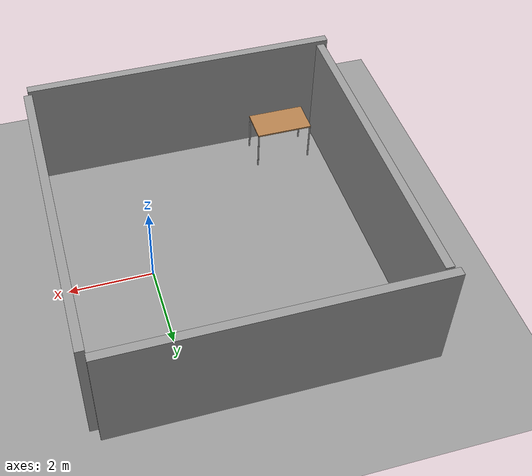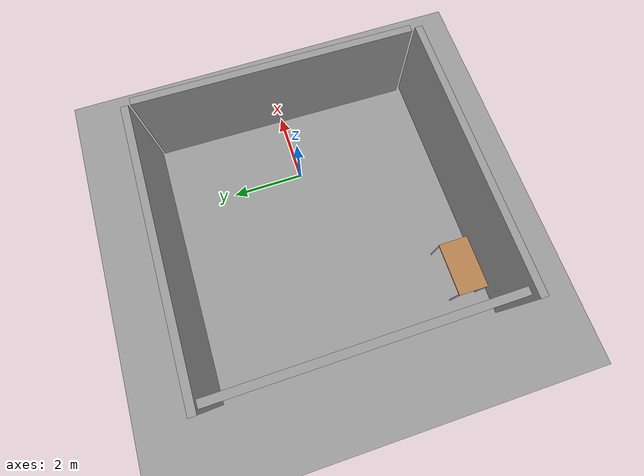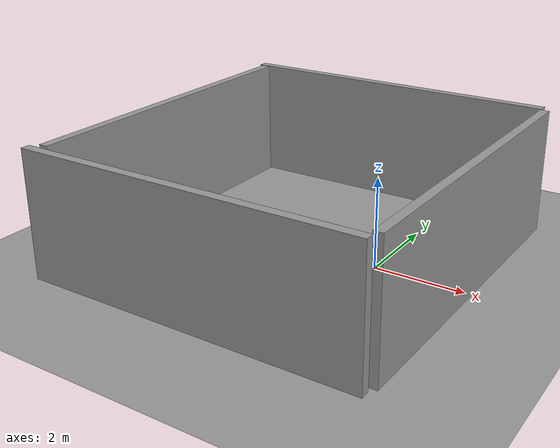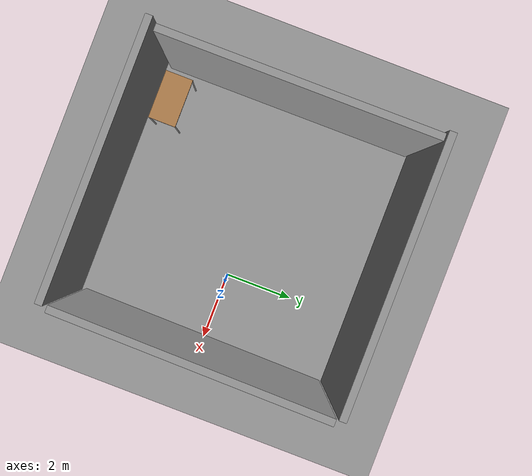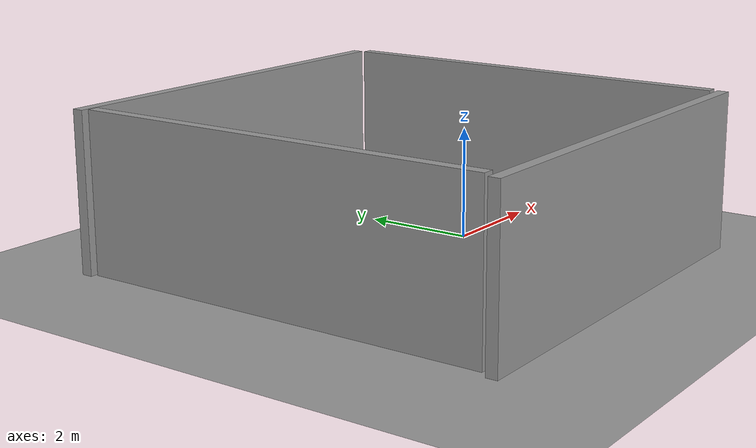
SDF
<sdf version="1.6">
 <world name="default">
  <light name="sun" type="directional">
   <pose>0 0 10 0 -0 0</pose>
   <diffuse>0.8 0.8 0.8 1</diffuse>
   <specular>0.2 0.2 0.2 1</specular>
   <attenuation>
    <range>1000</range>
    <constant>0.9</constant>
    <linear>0.01</linear>
    <quadratic>0.001</quadratic>
   </attenuation>
   <direction>0.5 0.1 -0.9</direction>
  </light>
  <scene><ambient>0.4 0.4 0.4 1</ambient><background>0.7 0.7 0.7 1</background><shadows>1</shadows></scene>
  <physics name="default_physics" default="0" type="ode">
   <max_step_size>0.01</max_step_size>
   <real_time_factor>1</real_time_factor>
   <real_time_update_rate>100</real_time_update_rate>
  </physics>
  <model name="ground_plane_0">
   <static>1</static>
   <link name="link">
    <collision name="collision">
     <geometry><plane><normal>0 0 1</normal><size>100 100</size></plane></geometry>
     <surface><friction><ode><mu>100</mu><mu2>50</mu2></ode></friction></surface>
    </collision>
    <visual name="visual">
     <cast_shadows>0</cast_shadows>
     <geometry><plane><normal>0 0 1</normal><size>100 100</size></plane></geometry>
     <material>
      <script><uri>file://media/materials/scripts/gazebo.material</uri><name>Gazebo/Grey</name></script>
     </material>
    </visual>
    <velocity_decay><linear>0</linear><angular>0</angular></velocity_decay>
   </link>
   <pose>0.497681 0 0 0 -0 0</pose>
  </model>
  <gravity>0 0 -9.8</gravity>
  <magnetic_field>6e-06 2.3e-05 -4.2e-05</magnetic_field>
  <atmosphere type="adiabatic"/>
  <spherical_coordinates>
   <surface_model>EARTH_WGS84</surface_model>
   <latitude_deg>0</latitude_deg>
   <longitude_deg>0</longitude_deg>
   <elevation>0</elevation>
   <heading_deg>0</heading_deg>
  </spherical_coordinates>
  <model name="grey_wall">
   <static>1</static>
   <link name="link">
    <pose>0 0 1.4 0 -0 0</pose>
    <collision name="collision"><geometry><box><size>7.5 0.2 2.8</size></box></geometry></collision>
    <visual name="visual">
     <cast_shadows>0</cast_shadows>
     <geometry><box><size>7.5 0.2 2.8</size></box></geometry>
     <material>
      <script>
       <uri>model://grey_wall/materials/scripts</uri>
       <uri>model://grey_wall/materials/textures</uri>
       <name>vrc/grey_wall</name>
      </script>
     </material>
    </visual>
   </link>
   <pose>-1.76855 -4.01063 0 0 -0 0</pose>
  </model>
  <model name="grey_wall_0">
   <static>1</static>
   <link name="link">
    <pose>0 0 1.4 0 -0 0</pose>
    <collision name="collision"><geometry><box><size>7.5 0.2 2.8</size></box></geometry></collision>
    <visual name="visual">
     <cast_shadows>0</cast_shadows>
     <geometry><box><size>7.5 0.2 2.8</size></box></geometry>
     <material>
      <script>
       <uri>model://grey_wall/materials/scripts</uri>
       <uri>model://grey_wall/materials/textures</uri>
       <name>vrc/grey_wall</name>
      </script>
     </material>
    </visual>
   </link>
   <pose>-1.75225 3.86329 0 0 -0 0</pose>
  </model>
  <model name="grey_wall_1">
   <static>1</static>
   <link name="link">
    <pose>0 0 1.4 0 -0 0</pose>
    <collision name="collision"><geometry><box><size>7.5 0.2 2.8</size></box></geometry></collision>
    <visual name="visual">
     <cast_shadows>0</cast_shadows>
     <geometry><box><size>7.5 0.2 2.8</size></box></geometry>
     <material>
      <script>
       <uri>model://grey_wall/materials/scripts</uri>
       <uri>model://grey_wall/materials/textures</uri>
       <name>vrc/grey_wall</name>
      </script>
     </material>
    </visual>
   </link>
   <pose>-5.29168 -0.028481 0 0 0 -1.56814</pose>
  </model>
  <model name="grey_wall_2">
   <static>1</static>
   <link name="link">
    <pose>0 0 1.4 0 -0 0</pose>
    <collision name="collision"><geometry><box><size>7.5 0.2 2.8</size></box></geometry></collision>
    <visual name="visual">
     <cast_shadows>0</cast_shadows>
     <geometry><box><size>7.5 0.2 2.8</size></box></geometry>
     <material>
      <script>
       <uri>model://grey_wall/materials/scripts</uri>
       <uri>model://grey_wall/materials/textures</uri>
       <name>vrc/grey_wall</name>
      </script>
     </material>
    </visual>
   </link>
   <pose>2.04197 -0.047166 0 0 0 -1.5822</pose>
  </model>
  <model name="table">
   <static>0</static>
   <link name="link">
    <collision name="surface">
     <pose>0 0 1 0 -0 0</pose>
     <geometry><box><size>1.5 0.8 0.03</size></box></geometry>
     <surface><friction><ode><mu>0.6</mu><mu2>0.6</mu2></ode></friction></surface>
    </collision>
    <visual name="visual1">
     <pose>0 0 1 0 -0 0</pose>
     <geometry><box><size>1.4 0.8 0.04</size></box></geometry>
     <material>
      <script><uri>file://media/materials/scripts/gazebo.material</uri><name>Gazebo/Wood</name></script>
     </material>
    </visual>
    <collision name="front_left_leg">
     <pose>0.68 0.38 0.5 0 -0 0</pose>
     <geometry><cylinder><radius>0.02</radius><length>1</length></cylinder></geometry>
    </collision>
    <visual name="front_left_leg">
     <pose>0.68 0.38 0.5 0 -0 0</pose>
     <geometry><cylinder><radius>0.02</radius><length>1</length></cylinder></geometry>
     <material>
      <script><uri>file://media/materials/scripts/gazebo.material</uri><name>Gazebo/Grey</name></script>
     </material>
    </visual>
    <collision name="front_right_leg">
     <pose>0.68 -0.38 0.5 0 -0 0</pose>
     <geometry><cylinder><radius>0.02</radius><length>1</length></cylinder></geometry>
    </collision>
    <visual name="front_right_leg">
     <pose>0.68 -0.38 0.5 0 -0 0</pose>
     <geometry><cylinder><radius>0.02</radius><length>1</length></cylinder></geometry>
     <material>
      <script><uri>file://media/materials/scripts/gazebo.material</uri><name>Gazebo/Grey</name></script>
     </material>
    </visual>
    <collision name="back_right_leg">
     <pose>-0.68 -0.38 0.5 0 -0 0</pose>
     <geometry><cylinder><radius>0.02</radius><length>1</length></cylinder></geometry>
    </collision>
    <visual name="back_right_leg">
     <pose>-0.68 -0.38 0.5 0 -0 0</pose>
     <geometry><cylinder><radius>0.02</radius><length>1</length></cylinder></geometry>
     <material>
      <script><uri>file://media/materials/scripts/gazebo.material</uri><name>Gazebo/Grey</name></script>
     </material>
    </visual>
    <collision name="back_left_leg">
     <pose>-0.68 0.38 0.5 0 -0 0</pose>
     <geometry><cylinder><radius>0.02</radius><length>1</length></cylinder></geometry>
    </collision>
    <visual name="back_left_leg">
     <pose>-0.68 0.38 0.5 0 -0 0</pose>
     <geometry><cylinder><radius>0.02</radius><length>1</length></cylinder></geometry>
     <material>
      <script><uri>file://media/materials/scripts/gazebo.material</uri><name>Gazebo/Grey</name></script>
     </material>
    </visual>
    <inertial>
     <inertia><ixx>1</ixx><ixy>0</ixy><ixz>0</ixz><iyy>1</iyy><iyz>0</iyz><izz>1</izz></inertia>
     <mass>1</mass>
    </inertial>
   </link>
   <pose>-4.13096 -3.22741 -0.000134 0 0.000205 0</pose>
  </model>
 </world>
</sdf>
